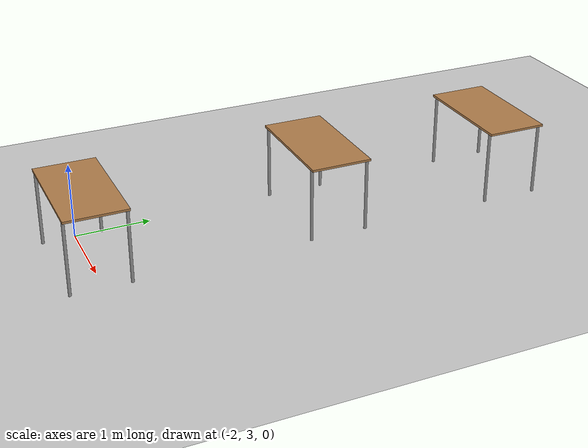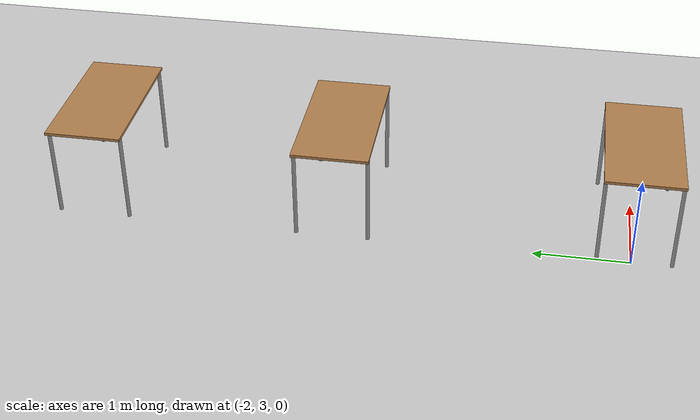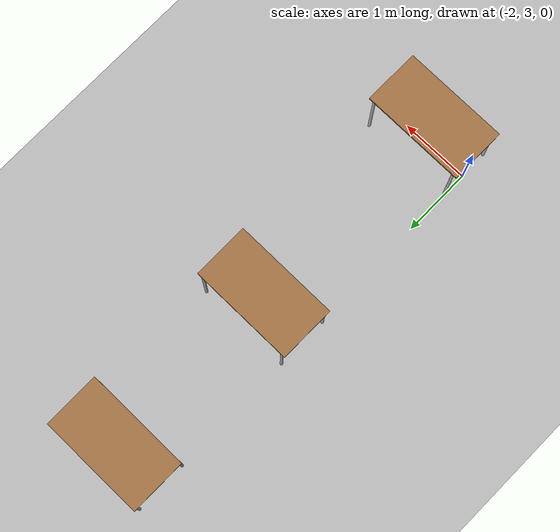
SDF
<sdf version="1.6">
 <world name="default">
  <model name="ground_plane">
   <static>1</static>
   <link name="link">
    <collision name="collision">
     <geometry><plane><normal>0 0 1</normal><size>100 100</size></plane></geometry>
     <surface>
      <contact><collide_bitmask>65535</collide_bitmask></contact>
      <friction><ode><mu>100</mu><mu2>50</mu2></ode></friction>
     </surface>
    </collision>
    <visual name="visual">
     <cast_shadows>0</cast_shadows>
     <geometry><plane><normal>0 0 1</normal><size>100 100</size></plane></geometry>
     <material>
      <script><uri>file://media/materials/scripts/gazebo.material</uri><name>Gazebo/Grey</name></script>
     </material>
    </visual>
   </link>
  </model>
  <model name="table_clone_0_clone_0_clone_clone_clone_clone_clone_3">
   <static>1</static>
   <link name="link">
    <collision name="surface">
     <pose>0 0 1 0 -0 0</pose>
     <geometry><box><size>1.5 0.8 0.03</size></box></geometry>
     <surface><friction><ode><mu>0.6</mu><mu2>0.6</mu2></ode></friction></surface>
    </collision>
    <visual name="visual1">
     <pose>0 0 1 0 -0 0</pose>
     <geometry><box><size>1.5 0.8 0.03</size></box></geometry>
     <material>
      <script><uri>file://media/materials/scripts/gazebo.material</uri><name>Gazebo/Wood</name></script>
     </material>
    </visual>
    <collision name="front_left_leg">
     <pose>0.68 0.38 0.5 0 -0 0</pose>
     <geometry><cylinder><radius>0.02</radius><length>1</length></cylinder></geometry>
    </collision>
    <visual name="front_left_leg">
     <pose>0.68 0.38 0.5 0 -0 0</pose>
     <geometry><cylinder><radius>0.02</radius><length>1</length></cylinder></geometry>
     <material>
      <script><uri>file://media/materials/scripts/gazebo.material</uri><name>Gazebo/Grey</name></script>
     </material>
    </visual>
    <collision name="front_right_leg">
     <pose>0.68 -0.38 0.5 0 -0 0</pose>
     <geometry><cylinder><radius>0.02</radius><length>1</length></cylinder></geometry>
    </collision>
    <visual name="front_right_leg">
     <pose>0.68 -0.38 0.5 0 -0 0</pose>
     <geometry><cylinder><radius>0.02</radius><length>1</length></cylinder></geometry>
     <material>
      <script><uri>file://media/materials/scripts/gazebo.material</uri><name>Gazebo/Grey</name></script>
     </material>
    </visual>
    <collision name="back_right_leg">
     <pose>-0.68 -0.38 0.5 0 -0 0</pose>
     <geometry><cylinder><radius>0.02</radius><length>1</length></cylinder></geometry>
    </collision>
    <visual name="back_right_leg">
     <pose>-0.68 -0.38 0.5 0 -0 0</pose>
     <geometry><cylinder><radius>0.02</radius><length>1</length></cylinder></geometry>
     <material>
      <script><uri>file://media/materials/scripts/gazebo.material</uri><name>Gazebo/Grey</name></script>
     </material>
    </visual>
    <collision name="back_left_leg">
     <pose>-0.68 0.38 0.5 0 -0 0</pose>
     <geometry><cylinder><radius>0.02</radius><length>1</length></cylinder></geometry>
    </collision>
    <visual name="back_left_leg">
     <pose>-0.68 0.38 0.5 0 -0 0</pose>
     <geometry><cylinder><radius>0.02</radius><length>1</length></cylinder></geometry>
     <material>
      <script><uri>file://media/materials/scripts/gazebo.material</uri><name>Gazebo/Grey</name></script>
     </material>
    </visual>
   </link>
   <pose>-1.34747 6.0871 0 0 -0 0</pose>
  </model>
  <model name="table_clone_0_clone_0_clone_clone_clone_clone_clone_3_clone">
   <static>1</static>
   <link name="link">
    <collision name="surface">
     <pose>0 0 1 0 -0 0</pose>
     <geometry><box><size>1.5 0.8 0.03</size></box></geometry>
     <surface><friction><ode><mu>0.6</mu><mu2>0.6</mu2></ode></friction></surface>
    </collision>
    <visual name="visual1">
     <pose>0 0 1 0 -0 0</pose>
     <geometry><box><size>1.5 0.8 0.03</size></box></geometry>
     <material>
      <script><uri>file://media/materials/scripts/gazebo.material</uri><name>Gazebo/Wood</name></script>
     </material>
    </visual>
    <collision name="front_left_leg">
     <pose>0.68 0.38 0.5 0 -0 0</pose>
     <geometry><cylinder><radius>0.02</radius><length>1</length></cylinder></geometry>
    </collision>
    <visual name="front_left_leg">
     <pose>0.68 0.38 0.5 0 -0 0</pose>
     <geometry><cylinder><radius>0.02</radius><length>1</length></cylinder></geometry>
     <material>
      <script><uri>file://media/materials/scripts/gazebo.material</uri><name>Gazebo/Grey</name></script>
     </material>
    </visual>
    <collision name="front_right_leg">
     <pose>0.68 -0.38 0.5 0 -0 0</pose>
     <geometry><cylinder><radius>0.02</radius><length>1</length></cylinder></geometry>
    </collision>
    <visual name="front_right_leg">
     <pose>0.68 -0.38 0.5 0 -0 0</pose>
     <geometry><cylinder><radius>0.02</radius><length>1</length></cylinder></geometry>
     <material>
      <script><uri>file://media/materials/scripts/gazebo.material</uri><name>Gazebo/Grey</name></script>
     </material>
    </visual>
    <collision name="back_right_leg">
     <pose>-0.68 -0.38 0.5 0 -0 0</pose>
     <geometry><cylinder><radius>0.02</radius><length>1</length></cylinder></geometry>
    </collision>
    <visual name="back_right_leg">
     <pose>-0.68 -0.38 0.5 0 -0 0</pose>
     <geometry><cylinder><radius>0.02</radius><length>1</length></cylinder></geometry>
     <material>
      <script><uri>file://media/materials/scripts/gazebo.material</uri><name>Gazebo/Grey</name></script>
     </material>
    </visual>
    <collision name="back_left_leg">
     <pose>-0.68 0.38 0.5 0 -0 0</pose>
     <geometry><cylinder><radius>0.02</radius><length>1</length></cylinder></geometry>
    </collision>
    <visual name="back_left_leg">
     <pose>-0.68 0.38 0.5 0 -0 0</pose>
     <geometry><cylinder><radius>0.02</radius><length>1</length></cylinder></geometry>
     <material>
      <script><uri>file://media/materials/scripts/gazebo.material</uri><name>Gazebo/Grey</name></script>
     </material>
    </visual>
   </link>
   <pose>-1.35639 8.6653 0 0 -0 0</pose>
  </model>
  <model name="table_clone_0_clone_0_clone_clone_clone_clone_clone_3_clone_0">
   <static>1</static>
   <link name="link">
    <collision name="surface">
     <pose>0 0 1 0 -0 0</pose>
     <geometry><box><size>1.5 0.8 0.03</size></box></geometry>
     <surface><friction><ode><mu>0.6</mu><mu2>0.6</mu2></ode></friction></surface>
    </collision>
    <visual name="visual1">
     <pose>0 0 1 0 -0 0</pose>
     <geometry><box><size>1.5 0.8 0.03</size></box></geometry>
     <material>
      <script><uri>file://media/materials/scripts/gazebo.material</uri><name>Gazebo/Wood</name></script>
     </material>
    </visual>
    <collision name="front_left_leg">
     <pose>0.68 0.38 0.5 0 -0 0</pose>
     <geometry><cylinder><radius>0.02</radius><length>1</length></cylinder></geometry>
    </collision>
    <visual name="front_left_leg">
     <pose>0.68 0.38 0.5 0 -0 0</pose>
     <geometry><cylinder><radius>0.02</radius><length>1</length></cylinder></geometry>
     <material>
      <script><uri>file://media/materials/scripts/gazebo.material</uri><name>Gazebo/Grey</name></script>
     </material>
    </visual>
    <collision name="front_right_leg">
     <pose>0.68 -0.38 0.5 0 -0 0</pose>
     <geometry><cylinder><radius>0.02</radius><length>1</length></cylinder></geometry>
    </collision>
    <visual name="front_right_leg">
     <pose>0.68 -0.38 0.5 0 -0 0</pose>
     <geometry><cylinder><radius>0.02</radius><length>1</length></cylinder></geometry>
     <material>
      <script><uri>file://media/materials/scripts/gazebo.material</uri><name>Gazebo/Grey</name></script>
     </material>
    </visual>
    <collision name="back_right_leg">
     <pose>-0.68 -0.38 0.5 0 -0 0</pose>
     <geometry><cylinder><radius>0.02</radius><length>1</length></cylinder></geometry>
    </collision>
    <visual name="back_right_leg">
     <pose>-0.68 -0.38 0.5 0 -0 0</pose>
     <geometry><cylinder><radius>0.02</radius><length>1</length></cylinder></geometry>
     <material>
      <script><uri>file://media/materials/scripts/gazebo.material</uri><name>Gazebo/Grey</name></script>
     </material>
    </visual>
    <collision name="back_left_leg">
     <pose>-0.68 0.38 0.5 0 -0 0</pose>
     <geometry><cylinder><radius>0.02</radius><length>1</length></cylinder></geometry>
    </collision>
    <visual name="back_left_leg">
     <pose>-0.68 0.38 0.5 0 -0 0</pose>
     <geometry><cylinder><radius>0.02</radius><length>1</length></cylinder></geometry>
     <material>
      <script><uri>file://media/materials/scripts/gazebo.material</uri><name>Gazebo/Grey</name></script>
     </material>
    </visual>
   </link>
   <pose>-1.30838 2.9678 0 0 -0 0</pose>
  </model>
 </world>
</sdf>
